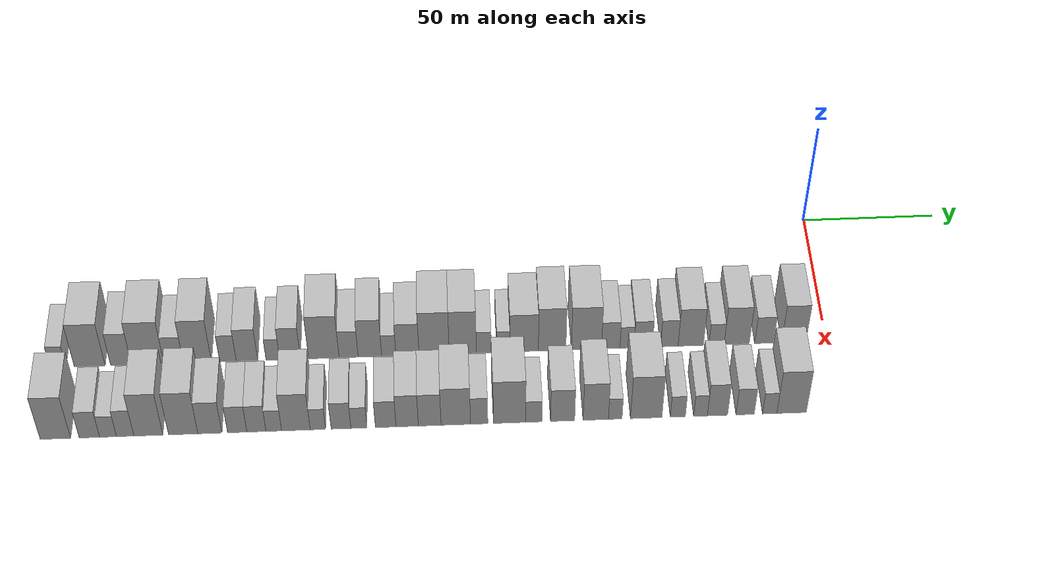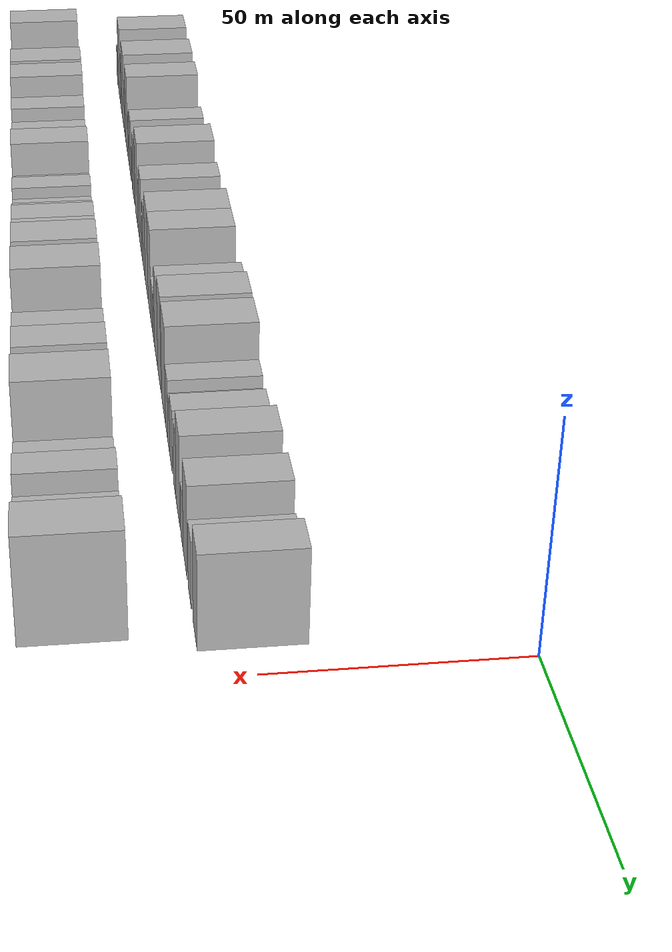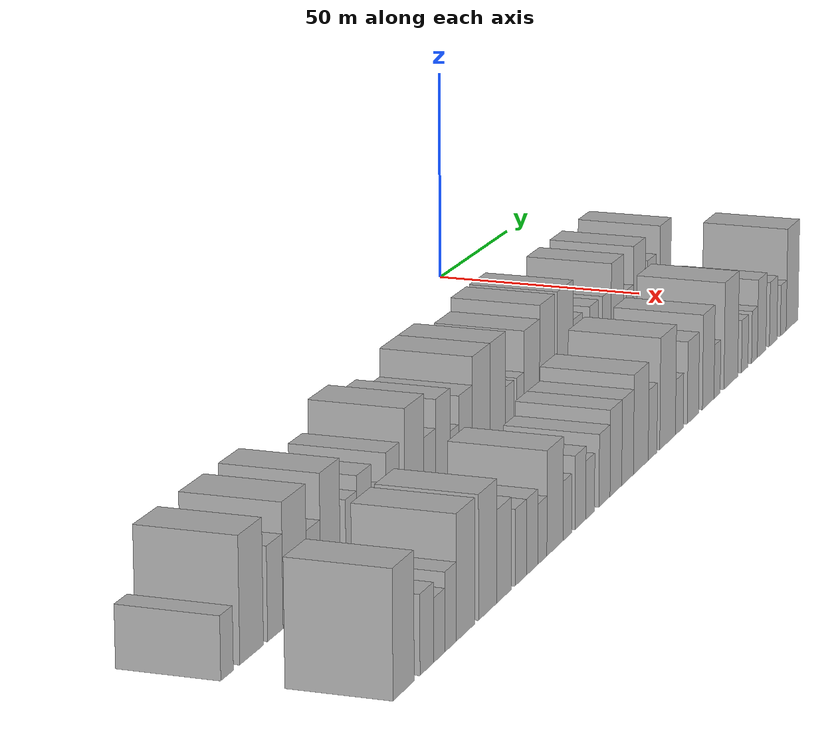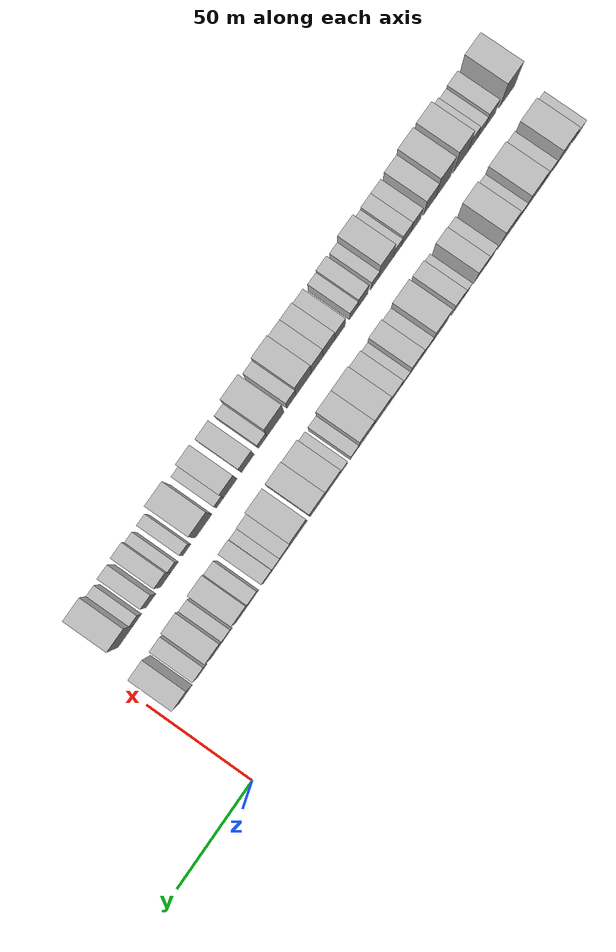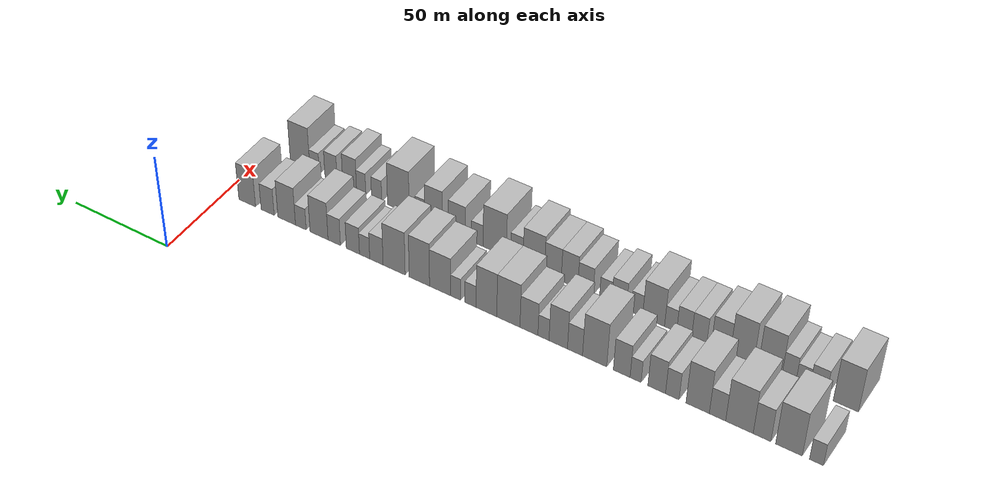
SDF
<sdf version="1.6">
 <world name="default">
  <model name="building_1">
   <static>1</static>
   <pose>50.0000 -281.1002 0 0.000000 0.000000 0.000000</pose>
   <link name="link">
    <pose>0 0 6.00 0 0 0</pose>
    <collision name="collision"><geometry><box><size>20.0000 5.7995 12.0000</size></box></geometry></collision>
    <visual name="visual">
     <cast_shadows>0</cast_shadows>
     <geometry><box><size>20.0000 5.7995 12.0000</size></box></geometry>
     <material>
      <script>
       <uri>model://HANNAS_wall/materials/scripts</uri>
       <uri>model://HANNAS_wall/materials/textures</uri>
       <name>vrc/HANNAS_wall</name>
      </script>
     </material>
    </visual>
   </link>
  </model>
  <model name="building_2">
   <static>1</static>
   <pose>50.0000 -269.6048 0 0.000000 0.000000 0.000000</pose>
   <link name="link">
    <pose>0 0 12.00 0 0 0</pose>
    <collision name="collision"><geometry><box><size>20.0000 11.1913 24.0000</size></box></geometry></collision>
    <visual name="visual">
     <cast_shadows>0</cast_shadows>
     <geometry><box><size>20.0000 11.1913 24.0000</size></box></geometry>
     <material>
      <script>
       <uri>model://HANNAS_wall/materials/scripts</uri>
       <uri>model://HANNAS_wall/materials/textures</uri>
       <name>vrc/HANNAS_wall</name>
      </script>
     </material>
    </visual>
   </link>
  </model>
  <model name="building_3">
   <static>1</static>
   <pose>50.0000 -258.2468 0 0.000000 0.000000 0.000000</pose>
   <link name="link">
    <pose>0 0 9.00 0 0 0</pose>
    <collision name="collision"><geometry><box><size>20.0000 7.5247 18.0000</size></box></geometry></collision>
    <visual name="visual">
     <cast_shadows>0</cast_shadows>
     <geometry><box><size>20.0000 7.5247 18.0000</size></box></geometry>
     <material>
      <script>
       <uri>model://HANNAS_wall/materials/scripts</uri>
       <uri>model://HANNAS_wall/materials/textures</uri>
       <name>vrc/HANNAS_wall</name>
      </script>
     </material>
    </visual>
   </link>
  </model>
  <model name="building_4">
   <static>1</static>
   <pose>50.0000 -248.5909 0 0.000000 0.000000 0.000000</pose>
   <link name="link">
    <pose>0 0 12.00 0 0 0</pose>
    <collision name="collision"><geometry><box><size>20.0000 11.7871 24.0000</size></box></geometry></collision>
    <visual name="visual">
     <cast_shadows>0</cast_shadows>
     <geometry><box><size>20.0000 11.7871 24.0000</size></box></geometry>
     <material>
      <script>
       <uri>model://HANNAS_wall/materials/scripts</uri>
       <uri>model://HANNAS_wall/materials/textures</uri>
       <name>vrc/HANNAS_wall</name>
      </script>
     </material>
    </visual>
   </link>
  </model>
  <model name="building_5">
   <static>1</static>
   <pose>50.0000 -239.1604 0 0.000000 0.000000 0.000000</pose>
   <link name="link">
    <pose>0 0 7.50 0 0 0</pose>
    <collision name="collision"><geometry><box><size>20.0000 7.0738 15.0000</size></box></geometry></collision>
    <visual name="visual">
     <cast_shadows>0</cast_shadows>
     <geometry><box><size>20.0000 7.0738 15.0000</size></box></geometry>
     <material>
      <script>
       <uri>model://HANNAS_wall/materials/scripts</uri>
       <uri>model://HANNAS_wall/materials/textures</uri>
       <name>vrc/HANNAS_wall</name>
      </script>
     </material>
    </visual>
   </link>
  </model>
  <model name="building_6">
   <static>1</static>
   <pose>50.0000 -230.5154 0 0.000000 0.000000 0.000000</pose>
   <link name="link">
    <pose>0 0 12.00 0 0 0</pose>
    <collision name="collision"><geometry><box><size>20.0000 10.2162 24.0000</size></box></geometry></collision>
    <visual name="visual">
     <cast_shadows>0</cast_shadows>
     <geometry><box><size>20.0000 10.2162 24.0000</size></box></geometry>
     <material>
      <script>
       <uri>model://HANNAS_wall/materials/scripts</uri>
       <uri>model://HANNAS_wall/materials/textures</uri>
       <name>vrc/HANNAS_wall</name>
      </script>
     </material>
    </visual>
   </link>
  </model>
  <model name="building_7">
   <static>1</static>
   <pose>50.0000 -219.3994 0 0.000000 0.000000 0.000000</pose>
   <link name="link">
    <pose>0 0 7.50 0 0 0</pose>
    <collision name="collision"><geometry><box><size>20.0000 6.0159 15.0000</size></box></geometry></collision>
    <visual name="visual">
     <cast_shadows>0</cast_shadows>
     <geometry><box><size>20.0000 6.0159 15.0000</size></box></geometry>
     <material>
      <script>
       <uri>model://HANNAS_wall/materials/scripts</uri>
       <uri>model://HANNAS_wall/materials/textures</uri>
       <name>vrc/HANNAS_wall</name>
      </script>
     </material>
    </visual>
   </link>
  </model>
  <model name="building_8">
   <static>1</static>
   <pose>50.0000 -212.4667 0 0.000000 0.000000 0.000000</pose>
   <link name="link">
    <pose>0 0 9.00 0 0 0</pose>
    <collision name="collision"><geometry><box><size>20.0000 7.8495 18.0000</size></box></geometry></collision>
    <visual name="visual">
     <cast_shadows>0</cast_shadows>
     <geometry><box><size>20.0000 7.8495 18.0000</size></box></geometry>
     <material>
      <script>
       <uri>model://HANNAS_wall/materials/scripts</uri>
       <uri>model://HANNAS_wall/materials/textures</uri>
       <name>vrc/HANNAS_wall</name>
      </script>
     </material>
    </visual>
   </link>
  </model>
  <model name="building_9">
   <static>1</static>
   <pose>50.0000 -203.0691 0 0.000000 0.000000 0.000000</pose>
   <link name="link">
    <pose>0 0 6.00 0 0 0</pose>
    <collision name="collision"><geometry><box><size>20.0000 4.9457 12.0000</size></box></geometry></collision>
    <visual name="visual">
     <cast_shadows>0</cast_shadows>
     <geometry><box><size>20.0000 4.9457 12.0000</size></box></geometry>
     <material>
      <script>
       <uri>model://HANNAS_wall/materials/scripts</uri>
       <uri>model://HANNAS_wall/materials/textures</uri>
       <name>vrc/HANNAS_wall</name>
      </script>
     </material>
    </visual>
   </link>
  </model>
  <model name="building_10">
   <static>1</static>
   <pose>50.0000 -196.8094 0 0.000000 0.000000 0.000000</pose>
   <link name="link">
    <pose>0 0 9.00 0 0 0</pose>
    <collision name="collision"><geometry><box><size>20.0000 7.5737 18.0000</size></box></geometry></collision>
    <visual name="visual">
     <cast_shadows>0</cast_shadows>
     <geometry><box><size>20.0000 7.5737 18.0000</size></box></geometry>
     <material>
      <script>
       <uri>model://HANNAS_wall/materials/scripts</uri>
       <uri>model://HANNAS_wall/materials/textures</uri>
       <name>vrc/HANNAS_wall</name>
      </script>
     </material>
    </visual>
   </link>
  </model>
  <model name="building_11">
   <static>1</static>
   <pose>50.0000 -184.4767 0 0.000000 0.000000 0.000000</pose>
   <link name="link">
    <pose>0 0 12.00 0 0 0</pose>
    <collision name="collision"><geometry><box><size>20.0000 11.0915 24.0000</size></box></geometry></collision>
    <visual name="visual">
     <cast_shadows>0</cast_shadows>
     <geometry><box><size>20.0000 11.0915 24.0000</size></box></geometry>
     <material>
      <script>
       <uri>model://HANNAS_wall/materials/scripts</uri>
       <uri>model://HANNAS_wall/materials/textures</uri>
       <name>vrc/HANNAS_wall</name>
      </script>
     </material>
    </visual>
   </link>
  </model>
  <model name="building_12">
   <static>1</static>
   <pose>50.0000 -175.4597 0 0.000000 0.000000 0.000000</pose>
   <link name="link">
    <pose>0 0 7.50 0 0 0</pose>
    <collision name="collision"><geometry><box><size>20.0000 6.9426 15.0000</size></box></geometry></collision>
    <visual name="visual">
     <cast_shadows>0</cast_shadows>
     <geometry><box><size>20.0000 6.9426 15.0000</size></box></geometry>
     <material>
      <script>
       <uri>model://HANNAS_wall/materials/scripts</uri>
       <uri>model://HANNAS_wall/materials/textures</uri>
       <name>vrc/HANNAS_wall</name>
      </script>
     </material>
    </visual>
   </link>
  </model>
  <model name="building_13">
   <static>1</static>
   <pose>50.0000 -167.6917 0 0.000000 0.000000 0.000000</pose>
   <link name="link">
    <pose>0 0 10.50 0 0 0</pose>
    <collision name="collision"><geometry><box><size>20.0000 8.5933 21.0000</size></box></geometry></collision>
    <visual name="visual">
     <cast_shadows>0</cast_shadows>
     <geometry><box><size>20.0000 8.5933 21.0000</size></box></geometry>
     <material>
      <script>
       <uri>model://HANNAS_wall/materials/scripts</uri>
       <uri>model://HANNAS_wall/materials/textures</uri>
       <name>vrc/HANNAS_wall</name>
      </script>
     </material>
    </visual>
   </link>
  </model>
  <model name="building_14">
   <static>1</static>
   <pose>50.0000 -160.8005 0 0.000000 0.000000 0.000000</pose>
   <link name="link">
    <pose>0 0 6.00 0 0 0</pose>
    <collision name="collision"><geometry><box><size>20.0000 5.1891 12.0000</size></box></geometry></collision>
    <visual name="visual">
     <cast_shadows>0</cast_shadows>
     <geometry><box><size>20.0000 5.1891 12.0000</size></box></geometry>
     <material>
      <script>
       <uri>model://HANNAS_wall/materials/scripts</uri>
       <uri>model://HANNAS_wall/materials/textures</uri>
       <name>vrc/HANNAS_wall</name>
      </script>
     </material>
    </visual>
   </link>
  </model>
  <model name="building_15">
   <static>1</static>
   <pose>50.0000 -153.9684 0 0.000000 0.000000 0.000000</pose>
   <link name="link">
    <pose>0 0 9.00 0 0 0</pose>
    <collision name="collision"><geometry><box><size>20.0000 8.4751 18.0000</size></box></geometry></collision>
    <visual name="visual">
     <cast_shadows>0</cast_shadows>
     <geometry><box><size>20.0000 8.4751 18.0000</size></box></geometry>
     <material>
      <script>
       <uri>model://HANNAS_wall/materials/scripts</uri>
       <uri>model://HANNAS_wall/materials/textures</uri>
       <name>vrc/HANNAS_wall</name>
      </script>
     </material>
    </visual>
   </link>
  </model>
  <model name="building_16">
   <static>1</static>
   <pose>50.0000 -144.1960 0 0.000000 0.000000 0.000000</pose>
   <link name="link">
    <pose>0 0 12.00 0 0 0</pose>
    <collision name="collision"><geometry><box><size>20.0000 11.0698 24.0000</size></box></geometry></collision>
    <visual name="visual">
     <cast_shadows>0</cast_shadows>
     <geometry><box><size>20.0000 11.0698 24.0000</size></box></geometry>
     <material>
      <script>
       <uri>model://HANNAS_wall/materials/scripts</uri>
       <uri>model://HANNAS_wall/materials/textures</uri>
       <name>vrc/HANNAS_wall</name>
      </script>
     </material>
    </visual>
   </link>
  </model>
  <model name="building_17">
   <static>1</static>
   <pose>50.0000 -133.6998 0 0.000000 0.000000 0.000000</pose>
   <link name="link">
    <pose>0 0 12.00 0 0 0</pose>
    <collision name="collision"><geometry><box><size>20.0000 9.9225 24.0000</size></box></geometry></collision>
    <visual name="visual">
     <cast_shadows>0</cast_shadows>
     <geometry><box><size>20.0000 9.9225 24.0000</size></box></geometry>
     <material>
      <script>
       <uri>model://HANNAS_wall/materials/scripts</uri>
       <uri>model://HANNAS_wall/materials/textures</uri>
       <name>vrc/HANNAS_wall</name>
      </script>
     </material>
    </visual>
   </link>
  </model>
  <model name="building_18">
   <static>1</static>
   <pose>50.0000 -126.0071 0 0.000000 0.000000 0.000000</pose>
   <link name="link">
    <pose>0 0 6.00 0 0 0</pose>
    <collision name="collision"><geometry><box><size>20.0000 5.4629 12.0000</size></box></geometry></collision>
    <visual name="visual">
     <cast_shadows>0</cast_shadows>
     <geometry><box><size>20.0000 5.4629 12.0000</size></box></geometry>
     <material>
      <script>
       <uri>model://HANNAS_wall/materials/scripts</uri>
       <uri>model://HANNAS_wall/materials/textures</uri>
       <name>vrc/HANNAS_wall</name>
      </script>
     </material>
    </visual>
   </link>
  </model>
  <model name="building_19">
   <static>1</static>
   <pose>50.0000 -118.8650 0 0.000000 0.000000 0.000000</pose>
   <link name="link">
    <pose>0 0 6.00 0 0 0</pose>
    <collision name="collision"><geometry><box><size>20.0000 4.8213 12.0000</size></box></geometry></collision>
    <visual name="visual">
     <cast_shadows>0</cast_shadows>
     <geometry><box><size>20.0000 4.8213 12.0000</size></box></geometry>
     <material>
      <script>
       <uri>model://HANNAS_wall/materials/scripts</uri>
       <uri>model://HANNAS_wall/materials/textures</uri>
       <name>vrc/HANNAS_wall</name>
      </script>
     </material>
    </visual>
   </link>
  </model>
  <model name="building_20">
   <static>1</static>
   <pose>50.0000 -111.2466 0 0.000000 0.000000 0.000000</pose>
   <link name="link">
    <pose>0 0 10.50 0 0 0</pose>
    <collision name="collision"><geometry><box><size>20.0000 10.4155 21.0000</size></box></geometry></collision>
    <visual name="visual">
     <cast_shadows>0</cast_shadows>
     <geometry><box><size>20.0000 10.4155 21.0000</size></box></geometry>
     <material>
      <script>
       <uri>model://HANNAS_wall/materials/scripts</uri>
       <uri>model://HANNAS_wall/materials/textures</uri>
       <name>vrc/HANNAS_wall</name>
      </script>
     </material>
    </visual>
   </link>
  </model>
  <model name="building_21">
   <static>1</static>
   <pose>50.0000 -100.9907 0 0.000000 0.000000 0.000000</pose>
   <link name="link">
    <pose>0 0 12.00 0 0 0</pose>
    <collision name="collision"><geometry><box><size>20.0000 10.0962 24.0000</size></box></geometry></collision>
    <visual name="visual">
     <cast_shadows>0</cast_shadows>
     <geometry><box><size>20.0000 10.0962 24.0000</size></box></geometry>
     <material>
      <script>
       <uri>model://HANNAS_wall/materials/scripts</uri>
       <uri>model://HANNAS_wall/materials/textures</uri>
       <name>vrc/HANNAS_wall</name>
      </script>
     </material>
    </visual>
   </link>
  </model>
  <model name="building_22">
   <static>1</static>
   <pose>50.0000 -88.4051 0 0.000000 0.000000 0.000000</pose>
   <link name="link">
    <pose>0 0 12.00 0 0 0</pose>
    <collision name="collision"><geometry><box><size>20.0000 11.0750 24.0000</size></box></geometry></collision>
    <visual name="visual">
     <cast_shadows>0</cast_shadows>
     <geometry><box><size>20.0000 11.0750 24.0000</size></box></geometry>
     <material>
      <script>
       <uri>model://HANNAS_wall/materials/scripts</uri>
       <uri>model://HANNAS_wall/materials/textures</uri>
       <name>vrc/HANNAS_wall</name>
      </script>
     </material>
    </visual>
   </link>
  </model>
  <model name="building_23">
   <static>1</static>
   <pose>50.0000 -79.4754 0 0.000000 0.000000 0.000000</pose>
   <link name="link">
    <pose>0 0 7.50 0 0 0</pose>
    <collision name="collision"><geometry><box><size>20.0000 6.7845 15.0000</size></box></geometry></collision>
    <visual name="visual">
     <cast_shadows>0</cast_shadows>
     <geometry><box><size>20.0000 6.7845 15.0000</size></box></geometry>
     <material>
      <script>
       <uri>model://HANNAS_wall/materials/scripts</uri>
       <uri>model://HANNAS_wall/materials/textures</uri>
       <name>vrc/HANNAS_wall</name>
      </script>
     </material>
    </visual>
   </link>
  </model>
  <model name="building_24">
   <static>1</static>
   <pose>50.0000 -73.4799 0 0.000000 0.000000 0.000000</pose>
   <link name="link">
    <pose>0 0 6.00 0 0 0</pose>
    <collision name="collision"><geometry><box><size>20.0000 5.2065 12.0000</size></box></geometry></collision>
    <visual name="visual">
     <cast_shadows>0</cast_shadows>
     <geometry><box><size>20.0000 5.2065 12.0000</size></box></geometry>
     <material>
      <script>
       <uri>model://HANNAS_wall/materials/scripts</uri>
       <uri>model://HANNAS_wall/materials/textures</uri>
       <name>vrc/HANNAS_wall</name>
      </script>
     </material>
    </visual>
   </link>
  </model>
  <model name="building_25">
   <static>1</static>
   <pose>50.0000 -67.5074 0 0.000000 0.000000 0.000000</pose>
   <link name="link">
    <pose>0 0 7.50 0 0 0</pose>
    <collision name="collision"><geometry><box><size>20.0000 6.7385 15.0000</size></box></geometry></collision>
    <visual name="visual">
     <cast_shadows>0</cast_shadows>
     <geometry><box><size>20.0000 6.7385 15.0000</size></box></geometry>
     <material>
      <script>
       <uri>model://HANNAS_wall/materials/scripts</uri>
       <uri>model://HANNAS_wall/materials/textures</uri>
       <name>vrc/HANNAS_wall</name>
      </script>
     </material>
    </visual>
   </link>
  </model>
  <model name="building_26">
   <static>1</static>
   <pose>50.0000 -57.9240 0 0.000000 0.000000 0.000000</pose>
   <link name="link">
    <pose>0 0 7.50 0 0 0</pose>
    <collision name="collision"><geometry><box><size>20.0000 6.4283 15.0000</size></box></geometry></collision>
    <visual name="visual">
     <cast_shadows>0</cast_shadows>
     <geometry><box><size>20.0000 6.4283 15.0000</size></box></geometry>
     <material>
      <script>
       <uri>model://HANNAS_wall/materials/scripts</uri>
       <uri>model://HANNAS_wall/materials/textures</uri>
       <name>vrc/HANNAS_wall</name>
      </script>
     </material>
    </visual>
   </link>
  </model>
  <model name="building_27">
   <static>1</static>
   <pose>50.0000 -50.0287 0 0.000000 0.000000 0.000000</pose>
   <link name="link">
    <pose>0 0 10.50 0 0 0</pose>
    <collision name="collision"><geometry><box><size>20.0000 9.3624 21.0000</size></box></geometry></collision>
    <visual name="visual">
     <cast_shadows>0</cast_shadows>
     <geometry><box><size>20.0000 9.3624 21.0000</size></box></geometry>
     <material>
      <script>
       <uri>model://HANNAS_wall/materials/scripts</uri>
       <uri>model://HANNAS_wall/materials/textures</uri>
       <name>vrc/HANNAS_wall</name>
      </script>
     </material>
    </visual>
   </link>
  </model>
  <model name="building_28">
   <static>1</static>
   <pose>50.0000 -40.5329 0 0.000000 0.000000 0.000000</pose>
   <link name="link">
    <pose>0 0 6.00 0 0 0</pose>
    <collision name="collision"><geometry><box><size>20.0000 5.6292 12.0000</size></box></geometry></collision>
    <visual name="visual">
     <cast_shadows>0</cast_shadows>
     <geometry><box><size>20.0000 5.6292 12.0000</size></box></geometry>
     <material>
      <script>
       <uri>model://HANNAS_wall/materials/scripts</uri>
       <uri>model://HANNAS_wall/materials/textures</uri>
       <name>vrc/HANNAS_wall</name>
      </script>
     </material>
    </visual>
   </link>
  </model>
  <model name="building_29">
   <static>1</static>
   <pose>50.0000 -33.0718 0 0.000000 0.000000 0.000000</pose>
   <link name="link">
    <pose>0 0 10.50 0 0 0</pose>
    <collision name="collision"><geometry><box><size>20.0000 9.2932 21.0000</size></box></geometry></collision>
    <visual name="visual">
     <cast_shadows>0</cast_shadows>
     <geometry><box><size>20.0000 9.2932 21.0000</size></box></geometry>
     <material>
      <script>
       <uri>model://HANNAS_wall/materials/scripts</uri>
       <uri>model://HANNAS_wall/materials/textures</uri>
       <name>vrc/HANNAS_wall</name>
      </script>
     </material>
    </visual>
   </link>
  </model>
  <model name="building_30">
   <static>1</static>
   <pose>50.0000 -22.9545 0 0.000000 0.000000 0.000000</pose>
   <link name="link">
    <pose>0 0 7.50 0 0 0</pose>
    <collision name="collision"><geometry><box><size>20.0000 6.9413 15.0000</size></box></geometry></collision>
    <visual name="visual">
     <cast_shadows>0</cast_shadows>
     <geometry><box><size>20.0000 6.9413 15.0000</size></box></geometry>
     <material>
      <script>
       <uri>model://HANNAS_wall/materials/scripts</uri>
       <uri>model://HANNAS_wall/materials/textures</uri>
       <name>vrc/HANNAS_wall</name>
      </script>
     </material>
    </visual>
   </link>
  </model>
  <model name="building_31">
   <static>1</static>
   <pose>50.0000 -11.9963 0 0.000000 0.000000 0.000000</pose>
   <link name="link">
    <pose>0 0 10.50 0 0 0</pose>
    <collision name="collision"><geometry><box><size>20.0000 8.9750 21.0000</size></box></geometry></collision>
    <visual name="visual">
     <cast_shadows>0</cast_shadows>
     <geometry><box><size>20.0000 8.9750 21.0000</size></box></geometry>
     <material>
      <script>
       <uri>model://HANNAS_wall/materials/scripts</uri>
       <uri>model://HANNAS_wall/materials/textures</uri>
       <name>vrc/HANNAS_wall</name>
      </script>
     </material>
    </visual>
   </link>
  </model>
  <model name="building_64">
   <static>1</static>
   <pose>82.0000 -278.6388 0 0.000000 0.000000 0.000000</pose>
   <link name="link">
    <pose>0 0 12.00 0 0 0</pose>
    <collision name="collision"><geometry><box><size>20.0000 10.7223 24.0000</size></box></geometry></collision>
    <visual name="visual">
     <cast_shadows>0</cast_shadows>
     <geometry><box><size>20.0000 10.7223 24.0000</size></box></geometry>
     <material>
      <script>
       <uri>model://HANNAS_wall/materials/scripts</uri>
       <uri>model://HANNAS_wall/materials/textures</uri>
       <name>vrc/HANNAS_wall</name>
      </script>
     </material>
    </visual>
   </link>
  </model>
  <model name="building_65">
   <static>1</static>
   <pose>82.0000 -266.6919 0 0.000000 0.000000 0.000000</pose>
   <link name="link">
    <pose>0 0 7.50 0 0 0</pose>
    <collision name="collision"><geometry><box><size>20.0000 7.1716 15.0000</size></box></geometry></collision>
    <visual name="visual">
     <cast_shadows>0</cast_shadows>
     <geometry><box><size>20.0000 7.1716 15.0000</size></box></geometry>
     <material>
      <script>
       <uri>model://HANNAS_wall/materials/scripts</uri>
       <uri>model://HANNAS_wall/materials/textures</uri>
       <name>vrc/HANNAS_wall</name>
      </script>
     </material>
    </visual>
   </link>
  </model>
  <model name="building_66">
   <static>1</static>
   <pose>82.0000 -260.1304 0 0.000000 0.000000 0.000000</pose>
   <link name="link">
    <pose>0 0 6.00 0 0 0</pose>
    <collision name="collision"><geometry><box><size>20.0000 5.9513 12.0000</size></box></geometry></collision>
    <visual name="visual">
     <cast_shadows>0</cast_shadows>
     <geometry><box><size>20.0000 5.9513 12.0000</size></box></geometry>
     <material>
      <script>
       <uri>model://HANNAS_wall/materials/scripts</uri>
       <uri>model://HANNAS_wall/materials/textures</uri>
       <name>vrc/HANNAS_wall</name>
      </script>
     </material>
    </visual>
   </link>
  </model>
  <model name="building_67">
   <static>1</static>
   <pose>82.0000 -254.0989 0 0.000000 0.000000 0.000000</pose>
   <link name="link">
    <pose>0 0 7.50 0 0 0</pose>
    <collision name="collision"><geometry><box><size>20.0000 6.1117 15.0000</size></box></geometry></collision>
    <visual name="visual">
     <cast_shadows>0</cast_shadows>
     <geometry><box><size>20.0000 6.1117 15.0000</size></box></geometry>
     <material>
      <script>
       <uri>model://HANNAS_wall/materials/scripts</uri>
       <uri>model://HANNAS_wall/materials/textures</uri>
       <name>vrc/HANNAS_wall</name>
      </script>
     </material>
    </visual>
   </link>
  </model>
  <model name="building_68">
   <static>1</static>
   <pose>82.0000 -245.9150 0 0.000000 0.000000 0.000000</pose>
   <link name="link">
    <pose>0 0 12.00 0 0 0</pose>
    <collision name="collision"><geometry><box><size>20.0000 10.2561 24.0000</size></box></geometry></collision>
    <visual name="visual">
     <cast_shadows>0</cast_shadows>
     <geometry><box><size>20.0000 10.2561 24.0000</size></box></geometry>
     <material>
      <script>
       <uri>model://HANNAS_wall/materials/scripts</uri>
       <uri>model://HANNAS_wall/materials/textures</uri>
       <name>vrc/HANNAS_wall</name>
      </script>
     </material>
    </visual>
   </link>
  </model>
  <model name="building_69">
   <static>1</static>
   <pose>82.0000 -233.6094 0 0.000000 0.000000 0.000000</pose>
   <link name="link">
    <pose>0 0 12.00 0 0 0</pose>
    <collision name="collision"><geometry><box><size>20.0000 10.3550 24.0000</size></box></geometry></collision>
    <visual name="visual">
     <cast_shadows>0</cast_shadows>
     <geometry><box><size>20.0000 10.3550 24.0000</size></box></geometry>
     <material>
      <script>
       <uri>model://HANNAS_wall/materials/scripts</uri>
       <uri>model://HANNAS_wall/materials/textures</uri>
       <name>vrc/HANNAS_wall</name>
      </script>
     </material>
    </visual>
   </link>
  </model>
  <model name="building_70">
   <static>1</static>
   <pose>82.0000 -224.1816 0 0.000000 0.000000 0.000000</pose>
   <link name="link">
    <pose>0 0 9.00 0 0 0</pose>
    <collision name="collision"><geometry><box><size>20.0000 8.5008 18.0000</size></box></geometry></collision>
    <visual name="visual">
     <cast_shadows>0</cast_shadows>
     <geometry><box><size>20.0000 8.5008 18.0000</size></box></geometry>
     <material>
      <script>
       <uri>model://HANNAS_wall/materials/scripts</uri>
       <uri>model://HANNAS_wall/materials/textures</uri>
       <name>vrc/HANNAS_wall</name>
      </script>
     </material>
    </visual>
   </link>
  </model>
  <model name="building_71">
   <static>1</static>
   <pose>82.0000 -214.5262 0 0.000000 0.000000 0.000000</pose>
   <link name="link">
    <pose>0 0 7.50 0 0 0</pose>
    <collision name="collision"><geometry><box><size>20.0000 6.8101 15.0000</size></box></geometry></collision>
    <visual name="visual">
     <cast_shadows>0</cast_shadows>
     <geometry><box><size>20.0000 6.8101 15.0000</size></box></geometry>
     <material>
      <script>
       <uri>model://HANNAS_wall/materials/scripts</uri>
       <uri>model://HANNAS_wall/materials/textures</uri>
       <name>vrc/HANNAS_wall</name>
      </script>
     </material>
    </visual>
   </link>
  </model>
  <model name="building_72">
   <static>1</static>
   <pose>82.0000 -207.7395 0 0.000000 0.000000 0.000000</pose>
   <link name="link">
    <pose>0 0 7.50 0 0 0</pose>
    <collision name="collision"><geometry><box><size>20.0000 6.7632 15.0000</size></box></geometry></collision>
    <visual name="visual">
     <cast_shadows>0</cast_shadows>
     <geometry><box><size>20.0000 6.7632 15.0000</size></box></geometry>
     <material>
      <script>
       <uri>model://HANNAS_wall/materials/scripts</uri>
       <uri>model://HANNAS_wall/materials/textures</uri>
       <name>vrc/HANNAS_wall</name>
      </script>
     </material>
    </visual>
   </link>
  </model>
  <model name="building_73">
   <static>1</static>
   <pose>82.0000 -201.5957 0 0.000000 0.000000 0.000000</pose>
   <link name="link">
    <pose>0 0 6.00 0 0 0</pose>
    <collision name="collision"><geometry><box><size>20.0000 5.5245 12.0000</size></box></geometry></collision>
    <visual name="visual">
     <cast_shadows>0</cast_shadows>
     <geometry><box><size>20.0000 5.5245 12.0000</size></box></geometry>
     <material>
      <script>
       <uri>model://HANNAS_wall/materials/scripts</uri>
       <uri>model://HANNAS_wall/materials/textures</uri>
       <name>vrc/HANNAS_wall</name>
      </script>
     </material>
    </visual>
   </link>
  </model>
  <model name="building_74">
   <static>1</static>
   <pose>82.0000 -193.7730 0 0.000000 0.000000 0.000000</pose>
   <link name="link">
    <pose>0 0 10.50 0 0 0</pose>
    <collision name="collision"><geometry><box><size>20.0000 10.1208 21.0000</size></box></geometry></collision>
    <visual name="visual">
     <cast_shadows>0</cast_shadows>
     <geometry><box><size>20.0000 10.1208 21.0000</size></box></geometry>
     <material>
      <script>
       <uri>model://HANNAS_wall/materials/scripts</uri>
       <uri>model://HANNAS_wall/materials/textures</uri>
       <name>vrc/HANNAS_wall</name>
      </script>
     </material>
    </visual>
   </link>
  </model>
  <model name="building_75">
   <static>1</static>
   <pose>82.0000 -186.0008 0 0.000000 0.000000 0.000000</pose>
   <link name="link">
    <pose>0 0 6.00 0 0 0</pose>
    <collision name="collision"><geometry><box><size>20.0000 5.4237 12.0000</size></box></geometry></collision>
    <visual name="visual">
     <cast_shadows>0</cast_shadows>
     <geometry><box><size>20.0000 5.4237 12.0000</size></box></geometry>
     <material>
      <script>
       <uri>model://HANNAS_wall/materials/scripts</uri>
       <uri>model://HANNAS_wall/materials/textures</uri>
       <name>vrc/HANNAS_wall</name>
      </script>
     </material>
    </visual>
   </link>
  </model>
  <model name="building_76">
   <static>1</static>
   <pose>82.0000 -177.7879 0 0.000000 0.000000 0.000000</pose>
   <link name="link">
    <pose>0 0 7.50 0 0 0</pose>
    <collision name="collision"><geometry><box><size>20.0000 7.0022 15.0000</size></box></geometry></collision>
    <visual name="visual">
     <cast_shadows>0</cast_shadows>
     <geometry><box><size>20.0000 7.0022 15.0000</size></box></geometry>
     <material>
      <script>
       <uri>model://HANNAS_wall/materials/scripts</uri>
       <uri>model://HANNAS_wall/materials/textures</uri>
       <name>vrc/HANNAS_wall</name>
      </script>
     </material>
    </visual>
   </link>
  </model>
  <model name="building_77">
   <static>1</static>
   <pose>82.0000 -171.4372 0 0.000000 0.000000 0.000000</pose>
   <link name="link">
    <pose>0 0 6.00 0 0 0</pose>
    <collision name="collision"><geometry><box><size>20.0000 5.6991 12.0000</size></box></geometry></collision>
    <visual name="visual">
     <cast_shadows>0</cast_shadows>
     <geometry><box><size>20.0000 5.6991 12.0000</size></box></geometry>
     <material>
      <script>
       <uri>model://HANNAS_wall/materials/scripts</uri>
       <uri>model://HANNAS_wall/materials/textures</uri>
       <name>vrc/HANNAS_wall</name>
      </script>
     </material>
    </visual>
   </link>
  </model>
  <model name="building_78">
   <static>1</static>
   <pose>82.0000 -161.9388 0 0.000000 0.000000 0.000000</pose>
   <link name="link">
    <pose>0 0 7.50 0 0 0</pose>
    <collision name="collision"><geometry><box><size>20.0000 7.2978 15.0000</size></box></geometry></collision>
    <visual name="visual">
     <cast_shadows>0</cast_shadows>
     <geometry><box><size>20.0000 7.2978 15.0000</size></box></geometry>
     <material>
      <script>
       <uri>model://HANNAS_wall/materials/scripts</uri>
       <uri>model://HANNAS_wall/materials/textures</uri>
       <name>vrc/HANNAS_wall</name>
      </script>
     </material>
    </visual>
   </link>
  </model>
  <model name="building_79">
   <static>1</static>
   <pose>82.0000 -154.3147 0 0.000000 0.000000 0.000000</pose>
   <link name="link">
    <pose>0 0 9.00 0 0 0</pose>
    <collision name="collision"><geometry><box><size>20.0000 7.9503 18.0000</size></box></geometry></collision>
    <visual name="visual">
     <cast_shadows>0</cast_shadows>
     <geometry><box><size>20.0000 7.9503 18.0000</size></box></geometry>
     <material>
      <script>
       <uri>model://HANNAS_wall/materials/scripts</uri>
       <uri>model://HANNAS_wall/materials/textures</uri>
       <name>vrc/HANNAS_wall</name>
      </script>
     </material>
    </visual>
   </link>
  </model>
  <model name="building_80">
   <static>1</static>
   <pose>82.0000 -146.3000 0 0.000000 0.000000 0.000000</pose>
   <link name="link">
    <pose>0 0 9.00 0 0 0</pose>
    <collision name="collision"><geometry><box><size>20.0000 8.0791 18.0000</size></box></geometry></collision>
    <visual name="visual">
     <cast_shadows>0</cast_shadows>
     <geometry><box><size>20.0000 8.0791 18.0000</size></box></geometry>
     <material>
      <script>
       <uri>model://HANNAS_wall/materials/scripts</uri>
       <uri>model://HANNAS_wall/materials/textures</uri>
       <name>vrc/HANNAS_wall</name>
      </script>
     </material>
    </visual>
   </link>
  </model>
  <model name="building_81">
   <static>1</static>
   <pose>82.0000 -137.0313 0 0.000000 0.000000 0.000000</pose>
   <link name="link">
    <pose>0 0 10.50 0 0 0</pose>
    <collision name="collision"><geometry><box><size>20.0000 10.4584 21.0000</size></box></geometry></collision>
    <visual name="visual">
     <cast_shadows>0</cast_shadows>
     <geometry><box><size>20.0000 10.4584 21.0000</size></box></geometry>
     <material>
      <script>
       <uri>model://HANNAS_wall/materials/scripts</uri>
       <uri>model://HANNAS_wall/materials/textures</uri>
       <name>vrc/HANNAS_wall</name>
      </script>
     </material>
    </visual>
   </link>
  </model>
  <model name="building_82">
   <static>1</static>
   <pose>82.0000 -128.7180 0 0.000000 0.000000 0.000000</pose>
   <link name="link">
    <pose>0 0 7.50 0 0 0</pose>
    <collision name="collision"><geometry><box><size>20.0000 6.1682 15.0000</size></box></geometry></collision>
    <visual name="visual">
     <cast_shadows>0</cast_shadows>
     <geometry><box><size>20.0000 6.1682 15.0000</size></box></geometry>
     <material>
      <script>
       <uri>model://HANNAS_wall/materials/scripts</uri>
       <uri>model://HANNAS_wall/materials/textures</uri>
       <name>vrc/HANNAS_wall</name>
      </script>
     </material>
    </visual>
   </link>
  </model>
  <model name="building_83">
   <static>1</static>
   <pose>82.0000 -117.8757 0 0.000000 0.000000 0.000000</pose>
   <link name="link">
    <pose>0 0 12.00 0 0 0</pose>
    <collision name="collision"><geometry><box><size>20.0000 11.5164 24.0000</size></box></geometry></collision>
    <visual name="visual">
     <cast_shadows>0</cast_shadows>
     <geometry><box><size>20.0000 11.5164 24.0000</size></box></geometry>
     <material>
      <script>
       <uri>model://HANNAS_wall/materials/scripts</uri>
       <uri>model://HANNAS_wall/materials/textures</uri>
       <name>vrc/HANNAS_wall</name>
      </script>
     </material>
    </visual>
   </link>
  </model>
  <model name="building_84">
   <static>1</static>
   <pose>82.0000 -109.2105 0 0.000000 0.000000 0.000000</pose>
   <link name="link">
    <pose>0 0 6.00 0 0 0</pose>
    <collision name="collision"><geometry><box><size>20.0000 5.8140 12.0000</size></box></geometry></collision>
    <visual name="visual">
     <cast_shadows>0</cast_shadows>
     <geometry><box><size>20.0000 5.8140 12.0000</size></box></geometry>
     <material>
      <script>
       <uri>model://HANNAS_wall/materials/scripts</uri>
       <uri>model://HANNAS_wall/materials/textures</uri>
       <name>vrc/HANNAS_wall</name>
      </script>
     </material>
    </visual>
   </link>
  </model>
  <model name="building_85">
   <static>1</static>
   <pose>82.0000 -99.0023 0 0.000000 0.000000 0.000000</pose>
   <link name="link">
    <pose>0 0 9.00 0 0 0</pose>
    <collision name="collision"><geometry><box><size>20.0000 8.6024 18.0000</size></box></geometry></collision>
    <visual name="visual">
     <cast_shadows>0</cast_shadows>
     <geometry><box><size>20.0000 8.6024 18.0000</size></box></geometry>
     <material>
      <script>
       <uri>model://HANNAS_wall/materials/scripts</uri>
       <uri>model://HANNAS_wall/materials/textures</uri>
       <name>vrc/HANNAS_wall</name>
      </script>
     </material>
    </visual>
   </link>
  </model>
  <model name="building_86">
   <static>1</static>
   <pose>82.0000 -87.1855 0 0.000000 0.000000 0.000000</pose>
   <link name="link">
    <pose>0 0 10.50 0 0 0</pose>
    <collision name="collision"><geometry><box><size>20.0000 9.0312 21.0000</size></box></geometry></collision>
    <visual name="visual">
     <cast_shadows>0</cast_shadows>
     <geometry><box><size>20.0000 9.0312 21.0000</size></box></geometry>
     <material>
      <script>
       <uri>model://HANNAS_wall/materials/scripts</uri>
       <uri>model://HANNAS_wall/materials/textures</uri>
       <name>vrc/HANNAS_wall</name>
      </script>
     </material>
    </visual>
   </link>
  </model>
  <model name="building_87">
   <static>1</static>
   <pose>82.0000 -80.2233 0 0.000000 0.000000 0.000000</pose>
   <link name="link">
    <pose>0 0 6.00 0 0 0</pose>
    <collision name="collision"><geometry><box><size>20.0000 4.8932 12.0000</size></box></geometry></collision>
    <visual name="visual">
     <cast_shadows>0</cast_shadows>
     <geometry><box><size>20.0000 4.8932 12.0000</size></box></geometry>
     <material>
      <script>
       <uri>model://HANNAS_wall/materials/scripts</uri>
       <uri>model://HANNAS_wall/materials/textures</uri>
       <name>vrc/HANNAS_wall</name>
      </script>
     </material>
    </visual>
   </link>
  </model>
  <model name="building_88">
   <static>1</static>
   <pose>82.0000 -69.1565 0 0.000000 0.000000 0.000000</pose>
   <link name="link">
    <pose>0 0 12.00 0 0 0</pose>
    <collision name="collision"><geometry><box><size>20.0000 11.2403 24.0000</size></box></geometry></collision>
    <visual name="visual">
     <cast_shadows>0</cast_shadows>
     <geometry><box><size>20.0000 11.2403 24.0000</size></box></geometry>
     <material>
      <script>
       <uri>model://HANNAS_wall/materials/scripts</uri>
       <uri>model://HANNAS_wall/materials/textures</uri>
       <name>vrc/HANNAS_wall</name>
      </script>
     </material>
    </visual>
   </link>
  </model>
  <model name="building_89">
   <static>1</static>
   <pose>82.0000 -57.8440 0 0.000000 0.000000 0.000000</pose>
   <link name="link">
    <pose>0 0 6.00 0 0 0</pose>
    <collision name="collision"><geometry><box><size>20.0000 5.3847 12.0000</size></box></geometry></collision>
    <visual name="visual">
     <cast_shadows>0</cast_shadows>
     <geometry><box><size>20.0000 5.3847 12.0000</size></box></geometry>
     <material>
      <script>
       <uri>model://HANNAS_wall/materials/scripts</uri>
       <uri>model://HANNAS_wall/materials/textures</uri>
       <name>vrc/HANNAS_wall</name>
      </script>
     </material>
    </visual>
   </link>
  </model>
  <model name="building_90">
   <static>1</static>
   <pose>82.0000 -49.7086 0 0.000000 0.000000 0.000000</pose>
   <link name="link">
    <pose>0 0 6.00 0 0 0</pose>
    <collision name="collision"><geometry><box><size>20.0000 4.8861 12.0000</size></box></geometry></collision>
    <visual name="visual">
     <cast_shadows>0</cast_shadows>
     <geometry><box><size>20.0000 4.8861 12.0000</size></box></geometry>
     <material>
      <script>
       <uri>model://HANNAS_wall/materials/scripts</uri>
       <uri>model://HANNAS_wall/materials/textures</uri>
       <name>vrc/HANNAS_wall</name>
      </script>
     </material>
    </visual>
   </link>
  </model>
  <model name="building_91">
   <static>1</static>
   <pose>82.0000 -43.6362 0 0.000000 0.000000 0.000000</pose>
   <link name="link">
    <pose>0 0 9.00 0 0 0</pose>
    <collision name="collision"><geometry><box><size>20.0000 7.2587 18.0000</size></box></geometry></collision>
    <visual name="visual">
     <cast_shadows>0</cast_shadows>
     <geometry><box><size>20.0000 7.2587 18.0000</size></box></geometry>
     <material>
      <script>
       <uri>model://HANNAS_wall/materials/scripts</uri>
       <uri>model://HANNAS_wall/materials/textures</uri>
       <name>vrc/HANNAS_wall</name>
      </script>
     </material>
    </visual>
   </link>
  </model>
  <model name="building_92">
   <static>1</static>
   <pose>82.0000 -33.7361 0 0.000000 0.000000 0.000000</pose>
   <link name="link">
    <pose>0 0 7.50 0 0 0</pose>
    <collision name="collision"><geometry><box><size>20.0000 6.5416 15.0000</size></box></geometry></collision>
    <visual name="visual">
     <cast_shadows>0</cast_shadows>
     <geometry><box><size>20.0000 6.5416 15.0000</size></box></geometry>
     <material>
      <script>
       <uri>model://HANNAS_wall/materials/scripts</uri>
       <uri>model://HANNAS_wall/materials/textures</uri>
       <name>vrc/HANNAS_wall</name>
      </script>
     </material>
    </visual>
   </link>
  </model>
  <model name="building_93">
   <static>1</static>
   <pose>82.0000 -24.9130 0 0.000000 0.000000 0.000000</pose>
   <link name="link">
    <pose>0 0 6.00 0 0 0</pose>
    <collision name="collision"><geometry><box><size>20.0000 5.1046 12.0000</size></box></geometry></collision>
    <visual name="visual">
     <cast_shadows>0</cast_shadows>
     <geometry><box><size>20.0000 5.1046 12.0000</size></box></geometry>
     <material>
      <script>
       <uri>model://HANNAS_wall/materials/scripts</uri>
       <uri>model://HANNAS_wall/materials/textures</uri>
       <name>vrc/HANNAS_wall</name>
      </script>
     </material>
    </visual>
   </link>
  </model>
  <model name="building_94">
   <static>1</static>
   <pose>82.0000 -17.0686 0 0.000000 0.000000 0.000000</pose>
   <link name="link">
    <pose>0 0 12.00 0 0 0</pose>
    <collision name="collision"><geometry><box><size>20.0000 10.5841 24.0000</size></box></geometry></collision>
    <visual name="visual">
     <cast_shadows>0</cast_shadows>
     <geometry><box><size>20.0000 10.5841 24.0000</size></box></geometry>
     <material>
      <script>
       <uri>model://HANNAS_wall/materials/scripts</uri>
       <uri>model://HANNAS_wall/materials/textures</uri>
       <name>vrc/HANNAS_wall</name>
      </script>
     </material>
    </visual>
   </link>
  </model>
 </world>
</sdf>
